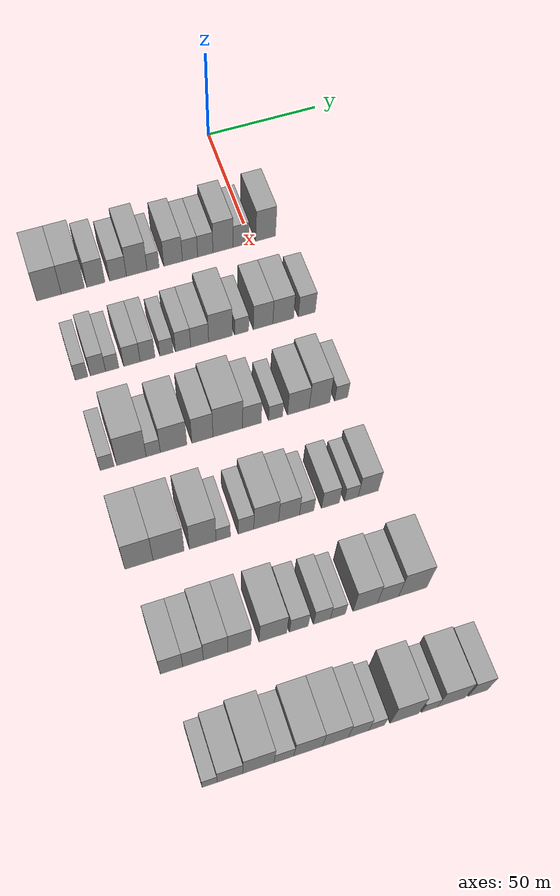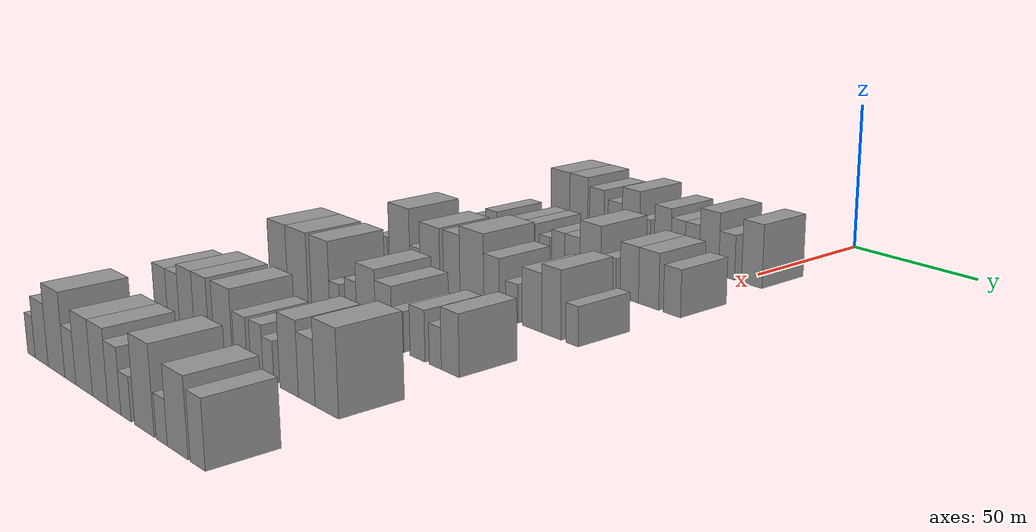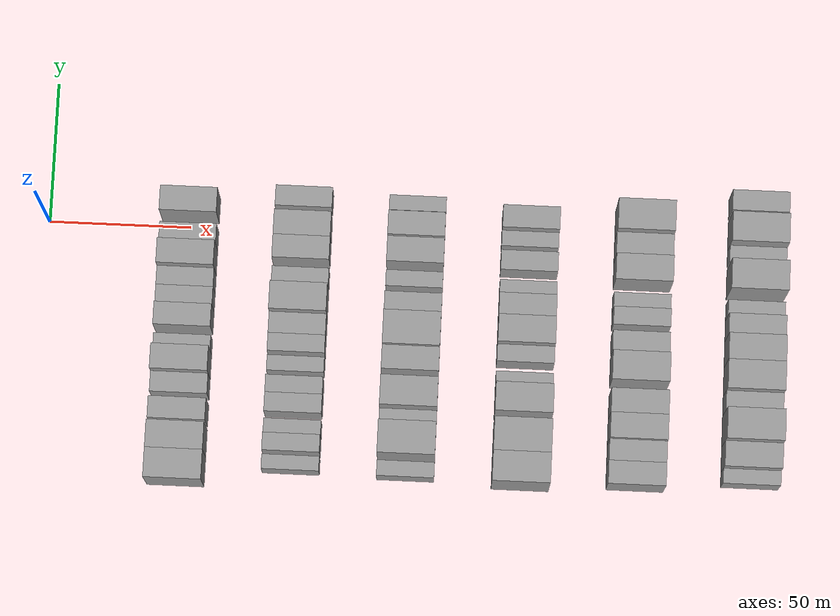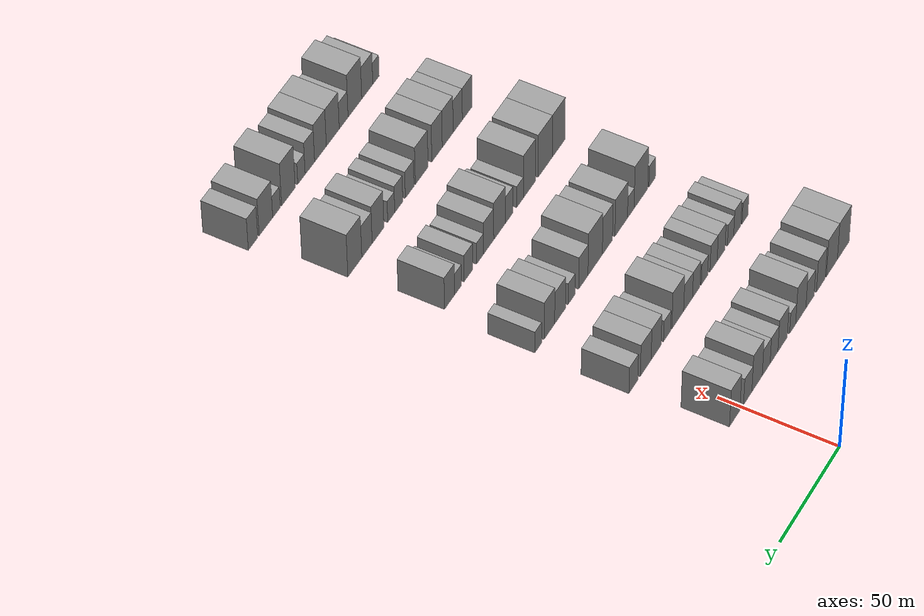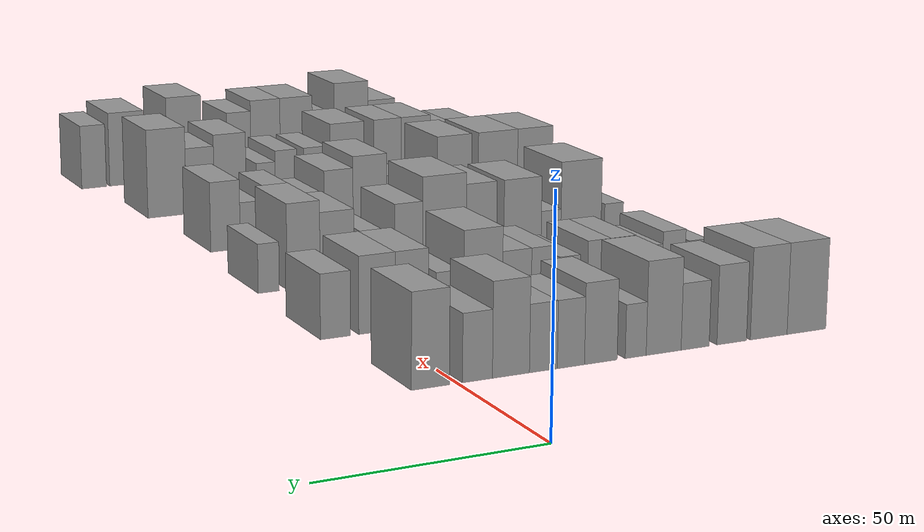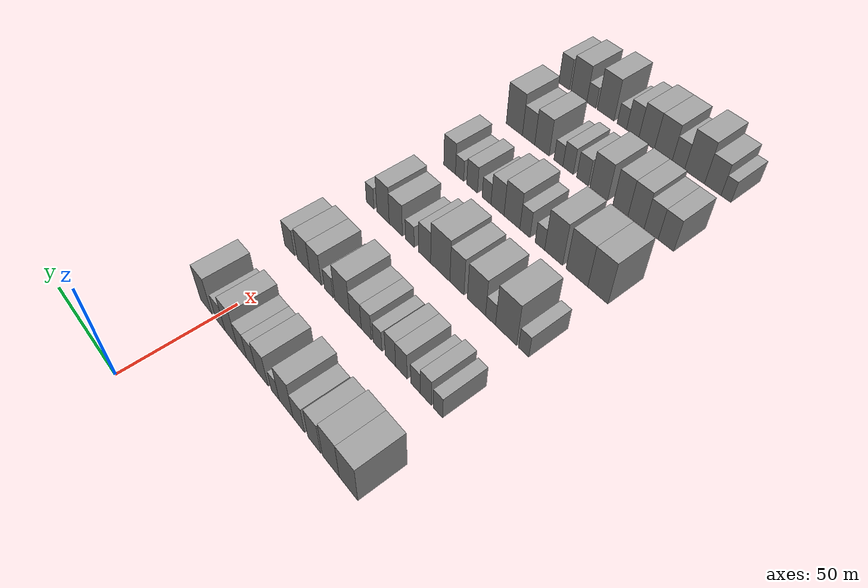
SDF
<sdf version="1.6">
 <world name="default">
  <model name="building_57">
   <static>1</static>
   <pose>50.0000 -86.7762 0 0.000000 0.000000 0.000000</pose>
   <link name="link">
    <pose>0 0 10.50 0 0 0</pose>
    <collision name="collision"><geometry><box><size>20.0000 10.3632 21.0000</size></box></geometry></collision>
    <visual name="visual">
     <cast_shadows>0</cast_shadows>
     <geometry><box><size>20.0000 10.3632 21.0000</size></box></geometry>
     <material>
      <script>
       <uri>model://grey_wall/materials/scripts</uri>
       <uri>model://grey_wall/materials/textures</uri>
       <name>vrc/grey_wall</name>
      </script>
     </material>
    </visual>
   </link>
  </model>
  <model name="building_58">
   <static>1</static>
   <pose>50.0000 -76.7567 0 0.000000 0.000000 0.000000</pose>
   <link name="link">
    <pose>0 0 10.50 0 0 0</pose>
    <collision name="collision"><geometry><box><size>20.0000 9.6757 21.0000</size></box></geometry></collision>
    <visual name="visual">
     <cast_shadows>0</cast_shadows>
     <geometry><box><size>20.0000 9.6757 21.0000</size></box></geometry>
     <material>
      <script>
       <uri>model://grey_wall/materials/scripts</uri>
       <uri>model://grey_wall/materials/textures</uri>
       <name>vrc/grey_wall</name>
      </script>
     </material>
    </visual>
   </link>
  </model>
  <model name="building_59">
   <static>1</static>
   <pose>50.0000 -67.0836 0 0.000000 0.000000 0.000000</pose>
   <link name="link">
    <pose>0 0 9.00 0 0 0</pose>
    <collision name="collision"><geometry><box><size>20.0000 7.6705 18.0000</size></box></geometry></collision>
    <visual name="visual">
     <cast_shadows>0</cast_shadows>
     <geometry><box><size>20.0000 7.6705 18.0000</size></box></geometry>
     <material>
      <script>
       <uri>model://grey_wall/materials/scripts</uri>
       <uri>model://grey_wall/materials/textures</uri>
       <name>vrc/grey_wall</name>
      </script>
     </material>
    </visual>
   </link>
  </model>
  <model name="building_60">
   <static>1</static>
   <pose>50.0000 -57.6711 0 0.000000 0.000000 0.000000</pose>
   <link name="link">
    <pose>0 0 7.50 0 0 0</pose>
    <collision name="collision"><geometry><box><size>20.0000 7.1544 15.0000</size></box></geometry></collision>
    <visual name="visual">
     <cast_shadows>0</cast_shadows>
     <geometry><box><size>20.0000 7.1544 15.0000</size></box></geometry>
     <material>
      <script>
       <uri>model://grey_wall/materials/scripts</uri>
       <uri>model://grey_wall/materials/textures</uri>
       <name>vrc/grey_wall</name>
      </script>
     </material>
    </visual>
   </link>
  </model>
  <model name="building_61">
   <static>1</static>
   <pose>50.0000 -49.6958 0 0.000000 0.000000 0.000000</pose>
   <link name="link">
    <pose>0 0 10.50 0 0 0</pose>
    <collision name="collision"><geometry><box><size>20.0000 8.7962 21.0000</size></box></geometry></collision>
    <visual name="visual">
     <cast_shadows>0</cast_shadows>
     <geometry><box><size>20.0000 8.7962 21.0000</size></box></geometry>
     <material>
      <script>
       <uri>model://grey_wall/materials/scripts</uri>
       <uri>model://grey_wall/materials/textures</uri>
       <name>vrc/grey_wall</name>
      </script>
     </material>
    </visual>
   </link>
  </model>
  <model name="building_62">
   <static>1</static>
   <pose>50.0000 -42.6953 0 0.000000 0.000000 0.000000</pose>
   <link name="link">
    <pose>0 0 6.00 0 0 0</pose>
    <collision name="collision"><geometry><box><size>20.0000 5.2047 12.0000</size></box></geometry></collision>
    <visual name="visual">
     <cast_shadows>0</cast_shadows>
     <geometry><box><size>20.0000 5.2047 12.0000</size></box></geometry>
     <material>
      <script>
       <uri>model://grey_wall/materials/scripts</uri>
       <uri>model://grey_wall/materials/textures</uri>
       <name>vrc/grey_wall</name>
      </script>
     </material>
    </visual>
   </link>
  </model>
  <model name="building_63">
   <static>1</static>
   <pose>50.0000 -34.0878 0 0.000000 0.000000 0.000000</pose>
   <link name="link">
    <pose>0 0 9.00 0 0 0</pose>
    <collision name="collision"><geometry><box><size>20.0000 8.0103 18.0000</size></box></geometry></collision>
    <visual name="visual">
     <cast_shadows>0</cast_shadows>
     <geometry><box><size>20.0000 8.0103 18.0000</size></box></geometry>
     <material>
      <script>
       <uri>model://grey_wall/materials/scripts</uri>
       <uri>model://grey_wall/materials/textures</uri>
       <name>vrc/grey_wall</name>
      </script>
     </material>
    </visual>
   </link>
  </model>
  <model name="building_64">
   <static>1</static>
   <pose>50.0000 -26.7853 0 0.000000 0.000000 0.000000</pose>
   <link name="link">
    <pose>0 0 7.50 0 0 0</pose>
    <collision name="collision"><geometry><box><size>20.0000 6.5948 15.0000</size></box></geometry></collision>
    <visual name="visual">
     <cast_shadows>0</cast_shadows>
     <geometry><box><size>20.0000 6.5948 15.0000</size></box></geometry>
     <material>
      <script>
       <uri>model://grey_wall/materials/scripts</uri>
       <uri>model://grey_wall/materials/textures</uri>
       <name>vrc/grey_wall</name>
      </script>
     </material>
    </visual>
   </link>
  </model>
  <model name="building_65">
   <static>1</static>
   <pose>50.0000 -20.1616 0 0.000000 0.000000 0.000000</pose>
   <link name="link">
    <pose>0 0 7.50 0 0 0</pose>
    <collision name="collision"><geometry><box><size>20.0000 6.6525 15.0000</size></box></geometry></collision>
    <visual name="visual">
     <cast_shadows>0</cast_shadows>
     <geometry><box><size>20.0000 6.6525 15.0000</size></box></geometry>
     <material>
      <script>
       <uri>model://grey_wall/materials/scripts</uri>
       <uri>model://grey_wall/materials/textures</uri>
       <name>vrc/grey_wall</name>
      </script>
     </material>
    </visual>
   </link>
  </model>
  <model name="building_66">
   <static>1</static>
   <pose>50.0000 -12.4660 0 0.000000 0.000000 0.000000</pose>
   <link name="link">
    <pose>0 0 10.50 0 0 0</pose>
    <collision name="collision"><geometry><box><size>20.0000 8.7388 21.0000</size></box></geometry></collision>
    <visual name="visual">
     <cast_shadows>0</cast_shadows>
     <geometry><box><size>20.0000 8.7388 21.0000</size></box></geometry>
     <material>
      <script>
       <uri>model://grey_wall/materials/scripts</uri>
       <uri>model://grey_wall/materials/textures</uri>
       <name>vrc/grey_wall</name>
      </script>
     </material>
    </visual>
   </link>
  </model>
  <model name="building_67">
   <static>1</static>
   <pose>50.0000 -4.6055 0 0.000000 0.000000 0.000000</pose>
   <link name="link">
    <pose>0 0 7.50 0 0 0</pose>
    <collision name="collision"><geometry><box><size>20.0000 6.9823 15.0000</size></box></geometry></collision>
    <visual name="visual">
     <cast_shadows>0</cast_shadows>
     <geometry><box><size>20.0000 6.9823 15.0000</size></box></geometry>
     <material>
      <script>
       <uri>model://grey_wall/materials/scripts</uri>
       <uri>model://grey_wall/materials/textures</uri>
       <name>vrc/grey_wall</name>
      </script>
     </material>
    </visual>
   </link>
  </model>
  <model name="building_68">
   <static>1</static>
   <pose>50.0000 6.2458 0 0.000000 0.000000 0.000000</pose>
   <link name="link">
    <pose>0 0 10.50 0 0 0</pose>
    <collision name="collision"><geometry><box><size>20.0000 8.7205 21.0000</size></box></geometry></collision>
    <visual name="visual">
     <cast_shadows>0</cast_shadows>
     <geometry><box><size>20.0000 8.7205 21.0000</size></box></geometry>
     <material>
      <script>
       <uri>model://grey_wall/materials/scripts</uri>
       <uri>model://grey_wall/materials/textures</uri>
       <name>vrc/grey_wall</name>
      </script>
     </material>
    </visual>
   </link>
  </model>
  <model name="building_200">
   <static>1</static>
   <pose>90.0000 -83.5003 0 0.000000 0.000000 0.000000</pose>
   <link name="link">
    <pose>0 0 6.00 0 0 0</pose>
    <collision name="collision"><geometry><box><size>20.0000 5.1215 12.0000</size></box></geometry></collision>
    <visual name="visual">
     <cast_shadows>0</cast_shadows>
     <geometry><box><size>20.0000 5.1215 12.0000</size></box></geometry>
     <material>
      <script>
       <uri>model://grey_wall/materials/scripts</uri>
       <uri>model://grey_wall/materials/textures</uri>
       <name>vrc/grey_wall</name>
      </script>
     </material>
    </visual>
   </link>
  </model>
  <model name="building_201">
   <static>1</static>
   <pose>90.0000 -76.8345 0 0.000000 0.000000 0.000000</pose>
   <link name="link">
    <pose>0 0 7.50 0 0 0</pose>
    <collision name="collision"><geometry><box><size>20.0000 6.2100 15.0000</size></box></geometry></collision>
    <visual name="visual">
     <cast_shadows>0</cast_shadows>
     <geometry><box><size>20.0000 6.2100 15.0000</size></box></geometry>
     <material>
      <script>
       <uri>model://grey_wall/materials/scripts</uri>
       <uri>model://grey_wall/materials/textures</uri>
       <name>vrc/grey_wall</name>
      </script>
     </material>
    </visual>
   </link>
  </model>
  <model name="building_202">
   <static>1</static>
   <pose>90.0000 -71.0354 0 0.000000 0.000000 0.000000</pose>
   <link name="link">
    <pose>0 0 6.00 0 0 0</pose>
    <collision name="collision"><geometry><box><size>20.0000 5.3882 12.0000</size></box></geometry></collision>
    <visual name="visual">
     <cast_shadows>0</cast_shadows>
     <geometry><box><size>20.0000 5.3882 12.0000</size></box></geometry>
     <material>
      <script>
       <uri>model://grey_wall/materials/scripts</uri>
       <uri>model://grey_wall/materials/textures</uri>
       <name>vrc/grey_wall</name>
      </script>
     </material>
    </visual>
   </link>
  </model>
  <model name="building_203">
   <static>1</static>
   <pose>90.0000 -62.9731 0 0.000000 0.000000 0.000000</pose>
   <link name="link">
    <pose>0 0 7.50 0 0 0</pose>
    <collision name="collision"><geometry><box><size>20.0000 6.7364 15.0000</size></box></geometry></collision>
    <visual name="visual">
     <cast_shadows>0</cast_shadows>
     <geometry><box><size>20.0000 6.7364 15.0000</size></box></geometry>
     <material>
      <script>
       <uri>model://grey_wall/materials/scripts</uri>
       <uri>model://grey_wall/materials/textures</uri>
       <name>vrc/grey_wall</name>
      </script>
     </material>
    </visual>
   </link>
  </model>
  <model name="building_204">
   <static>1</static>
   <pose>90.0000 -56.5542 0 0.000000 0.000000 0.000000</pose>
   <link name="link">
    <pose>0 0 7.50 0 0 0</pose>
    <collision name="collision"><geometry><box><size>20.0000 6.1013 15.0000</size></box></geometry></collision>
    <visual name="visual">
     <cast_shadows>0</cast_shadows>
     <geometry><box><size>20.0000 6.1013 15.0000</size></box></geometry>
     <material>
      <script>
       <uri>model://grey_wall/materials/scripts</uri>
       <uri>model://grey_wall/materials/textures</uri>
       <name>vrc/grey_wall</name>
      </script>
     </material>
    </visual>
   </link>
  </model>
  <model name="building_205">
   <static>1</static>
   <pose>90.0000 -48.7841 0 0.000000 0.000000 0.000000</pose>
   <link name="link">
    <pose>0 0 6.00 0 0 0</pose>
    <collision name="collision"><geometry><box><size>20.0000 5.4390 12.0000</size></box></geometry></collision>
    <visual name="visual">
     <cast_shadows>0</cast_shadows>
     <geometry><box><size>20.0000 5.4390 12.0000</size></box></geometry>
     <material>
      <script>
       <uri>model://grey_wall/materials/scripts</uri>
       <uri>model://grey_wall/materials/textures</uri>
       <name>vrc/grey_wall</name>
      </script>
     </material>
    </visual>
   </link>
  </model>
  <model name="building_206">
   <static>1</static>
   <pose>90.0000 -41.9028 0 0.000000 0.000000 0.000000</pose>
   <link name="link">
    <pose>0 0 7.50 0 0 0</pose>
    <collision name="collision"><geometry><box><size>20.0000 6.3235 15.0000</size></box></geometry></collision>
    <visual name="visual">
     <cast_shadows>0</cast_shadows>
     <geometry><box><size>20.0000 6.3235 15.0000</size></box></geometry>
     <material>
      <script>
       <uri>model://grey_wall/materials/scripts</uri>
       <uri>model://grey_wall/materials/textures</uri>
       <name>vrc/grey_wall</name>
      </script>
     </material>
    </visual>
   </link>
  </model>
  <model name="building_207">
   <static>1</static>
   <pose>90.0000 -35.0129 0 0.000000 0.000000 0.000000</pose>
   <link name="link">
    <pose>0 0 7.50 0 0 0</pose>
    <collision name="collision"><geometry><box><size>20.0000 7.4564 15.0000</size></box></geometry></collision>
    <visual name="visual">
     <cast_shadows>0</cast_shadows>
     <geometry><box><size>20.0000 7.4564 15.0000</size></box></geometry>
     <material>
      <script>
       <uri>model://grey_wall/materials/scripts</uri>
       <uri>model://grey_wall/materials/textures</uri>
       <name>vrc/grey_wall</name>
      </script>
     </material>
    </visual>
   </link>
  </model>
  <model name="building_208">
   <static>1</static>
   <pose>90.0000 -26.3475 0 0.000000 0.000000 0.000000</pose>
   <link name="link">
    <pose>0 0 10.50 0 0 0</pose>
    <collision name="collision"><geometry><box><size>20.0000 9.8745 21.0000</size></box></geometry></collision>
    <visual name="visual">
     <cast_shadows>0</cast_shadows>
     <geometry><box><size>20.0000 9.8745 21.0000</size></box></geometry>
     <material>
      <script>
       <uri>model://grey_wall/materials/scripts</uri>
       <uri>model://grey_wall/materials/textures</uri>
       <name>vrc/grey_wall</name>
      </script>
     </material>
    </visual>
   </link>
  </model>
  <model name="building_209">
   <static>1</static>
   <pose>90.0000 -17.4646 0 0.000000 0.000000 0.000000</pose>
   <link name="link">
    <pose>0 0 6.00 0 0 0</pose>
    <collision name="collision"><geometry><box><size>20.0000 5.8913 12.0000</size></box></geometry></collision>
    <visual name="visual">
     <cast_shadows>0</cast_shadows>
     <geometry><box><size>20.0000 5.8913 12.0000</size></box></geometry>
     <material>
      <script>
       <uri>model://grey_wall/materials/scripts</uri>
       <uri>model://grey_wall/materials/textures</uri>
       <name>vrc/grey_wall</name>
      </script>
     </material>
    </visual>
   </link>
  </model>
  <model name="building_210">
   <static>1</static>
   <pose>90.0000 -8.4083 0 0.000000 0.000000 0.000000</pose>
   <link name="link">
    <pose>0 0 9.00 0 0 0</pose>
    <collision name="collision"><geometry><box><size>20.0000 8.2212 18.0000</size></box></geometry></collision>
    <visual name="visual">
     <cast_shadows>0</cast_shadows>
     <geometry><box><size>20.0000 8.2212 18.0000</size></box></geometry>
     <material>
      <script>
       <uri>model://grey_wall/materials/scripts</uri>
       <uri>model://grey_wall/materials/textures</uri>
       <name>vrc/grey_wall</name>
      </script>
     </material>
    </visual>
   </link>
  </model>
  <model name="building_211">
   <static>1</static>
   <pose>90.0000 0.1334 0 0.000000 0.000000 0.000000</pose>
   <link name="link">
    <pose>0 0 9.00 0 0 0</pose>
    <collision name="collision"><geometry><box><size>20.0000 8.8623 18.0000</size></box></geometry></collision>
    <visual name="visual">
     <cast_shadows>0</cast_shadows>
     <geometry><box><size>20.0000 8.8623 18.0000</size></box></geometry>
     <material>
      <script>
       <uri>model://grey_wall/materials/scripts</uri>
       <uri>model://grey_wall/materials/textures</uri>
       <name>vrc/grey_wall</name>
      </script>
     </material>
    </visual>
   </link>
  </model>
  <model name="building_212">
   <static>1</static>
   <pose>90.0000 10.1912 0 0.000000 0.000000 0.000000</pose>
   <link name="link">
    <pose>0 0 7.50 0 0 0</pose>
    <collision name="collision"><geometry><box><size>20.0000 7.2533 15.0000</size></box></geometry></collision>
    <visual name="visual">
     <cast_shadows>0</cast_shadows>
     <geometry><box><size>20.0000 7.2533 15.0000</size></box></geometry>
     <material>
      <script>
       <uri>model://grey_wall/materials/scripts</uri>
       <uri>model://grey_wall/materials/textures</uri>
       <name>vrc/grey_wall</name>
      </script>
     </material>
    </visual>
   </link>
  </model>
  <model name="building_340">
   <static>1</static>
   <pose>130.0000 -83.9022 0 0.000000 0.000000 0.000000</pose>
   <link name="link">
    <pose>0 0 6.00 0 0 0</pose>
    <collision name="collision"><geometry><box><size>20.0000 5.4371 12.0000</size></box></geometry></collision>
    <visual name="visual">
     <cast_shadows>0</cast_shadows>
     <geometry><box><size>20.0000 5.4371 12.0000</size></box></geometry>
     <material>
      <script>
       <uri>model://grey_wall/materials/scripts</uri>
       <uri>model://grey_wall/materials/textures</uri>
       <name>vrc/grey_wall</name>
      </script>
     </material>
    </visual>
   </link>
  </model>
  <model name="building_341">
   <static>1</static>
   <pose>130.0000 -74.3977 0 0.000000 0.000000 0.000000</pose>
   <link name="link">
    <pose>0 0 12.00 0 0 0</pose>
    <collision name="collision"><geometry><box><size>20.0000 11.5720 24.0000</size></box></geometry></collision>
    <visual name="visual">
     <cast_shadows>0</cast_shadows>
     <geometry><box><size>20.0000 11.5720 24.0000</size></box></geometry>
     <material>
      <script>
       <uri>model://grey_wall/materials/scripts</uri>
       <uri>model://grey_wall/materials/textures</uri>
       <name>vrc/grey_wall</name>
      </script>
     </material>
    </visual>
   </link>
  </model>
  <model name="building_342">
   <static>1</static>
   <pose>130.0000 -65.8242 0 0.000000 0.000000 0.000000</pose>
   <link name="link">
    <pose>0 0 6.00 0 0 0</pose>
    <collision name="collision"><geometry><box><size>20.0000 5.5749 12.0000</size></box></geometry></collision>
    <visual name="visual">
     <cast_shadows>0</cast_shadows>
     <geometry><box><size>20.0000 5.5749 12.0000</size></box></geometry>
     <material>
      <script>
       <uri>model://grey_wall/materials/scripts</uri>
       <uri>model://grey_wall/materials/textures</uri>
       <name>vrc/grey_wall</name>
      </script>
     </material>
    </visual>
   </link>
  </model>
  <model name="building_343">
   <static>1</static>
   <pose>130.0000 -57.7880 0 0.000000 0.000000 0.000000</pose>
   <link name="link">
    <pose>0 0 10.50 0 0 0</pose>
    <collision name="collision"><geometry><box><size>20.0000 10.4975 21.0000</size></box></geometry></collision>
    <visual name="visual">
     <cast_shadows>0</cast_shadows>
     <geometry><box><size>20.0000 10.4975 21.0000</size></box></geometry>
     <material>
      <script>
       <uri>model://grey_wall/materials/scripts</uri>
       <uri>model://grey_wall/materials/textures</uri>
       <name>vrc/grey_wall</name>
      </script>
     </material>
    </visual>
   </link>
  </model>
  <model name="building_344">
   <static>1</static>
   <pose>130.0000 -46.3308 0 0.000000 0.000000 0.000000</pose>
   <link name="link">
    <pose>0 0 10.50 0 0 0</pose>
    <collision name="collision"><geometry><box><size>20.0000 8.4169 21.0000</size></box></geometry></collision>
    <visual name="visual">
     <cast_shadows>0</cast_shadows>
     <geometry><box><size>20.0000 8.4169 21.0000</size></box></geometry>
     <material>
      <script>
       <uri>model://grey_wall/materials/scripts</uri>
       <uri>model://grey_wall/materials/textures</uri>
       <name>vrc/grey_wall</name>
      </script>
     </material>
    </visual>
   </link>
  </model>
  <model name="building_345">
   <static>1</static>
   <pose>130.0000 -36.1937 0 0.000000 0.000000 0.000000</pose>
   <link name="link">
    <pose>0 0 12.00 0 0 0</pose>
    <collision name="collision"><geometry><box><size>20.0000 11.8574 24.0000</size></box></geometry></collision>
    <visual name="visual">
     <cast_shadows>0</cast_shadows>
     <geometry><box><size>20.0000 11.8574 24.0000</size></box></geometry>
     <material>
      <script>
       <uri>model://grey_wall/materials/scripts</uri>
       <uri>model://grey_wall/materials/textures</uri>
       <name>vrc/grey_wall</name>
      </script>
     </material>
    </visual>
   </link>
  </model>
  <model name="building_346">
   <static>1</static>
   <pose>130.0000 -26.4988 0 0.000000 0.000000 0.000000</pose>
   <link name="link">
    <pose>0 0 9.00 0 0 0</pose>
    <collision name="collision"><geometry><box><size>20.0000 7.5324 18.0000</size></box></geometry></collision>
    <visual name="visual">
     <cast_shadows>0</cast_shadows>
     <geometry><box><size>20.0000 7.5324 18.0000</size></box></geometry>
     <material>
      <script>
       <uri>model://grey_wall/materials/scripts</uri>
       <uri>model://grey_wall/materials/textures</uri>
       <name>vrc/grey_wall</name>
      </script>
     </material>
    </visual>
   </link>
  </model>
  <model name="building_347">
   <static>1</static>
   <pose>130.0000 -16.8822 0 0.000000 0.000000 0.000000</pose>
   <link name="link">
    <pose>0 0 6.00 0 0 0</pose>
    <collision name="collision"><geometry><box><size>20.0000 5.7009 12.0000</size></box></geometry></collision>
    <visual name="visual">
     <cast_shadows>0</cast_shadows>
     <geometry><box><size>20.0000 5.7009 12.0000</size></box></geometry>
     <material>
      <script>
       <uri>model://grey_wall/materials/scripts</uri>
       <uri>model://grey_wall/materials/textures</uri>
       <name>vrc/grey_wall</name>
      </script>
     </material>
    </visual>
   </link>
  </model>
  <model name="building_348">
   <static>1</static>
   <pose>130.0000 -7.5818 0 0.000000 0.000000 0.000000</pose>
   <link name="link">
    <pose>0 0 9.00 0 0 0</pose>
    <collision name="collision"><geometry><box><size>20.0000 8.8999 18.0000</size></box></geometry></collision>
    <visual name="visual">
     <cast_shadows>0</cast_shadows>
     <geometry><box><size>20.0000 8.8999 18.0000</size></box></geometry>
     <material>
      <script>
       <uri>model://grey_wall/materials/scripts</uri>
       <uri>model://grey_wall/materials/textures</uri>
       <name>vrc/grey_wall</name>
      </script>
     </material>
    </visual>
   </link>
  </model>
  <model name="building_349">
   <static>1</static>
   <pose>130.0000 1.1211 0 0.000000 0.000000 0.000000</pose>
   <link name="link">
    <pose>0 0 10.50 0 0 0</pose>
    <collision name="collision"><geometry><box><size>20.0000 8.5058 21.0000</size></box></geometry></collision>
    <visual name="visual">
     <cast_shadows>0</cast_shadows>
     <geometry><box><size>20.0000 8.5058 21.0000</size></box></geometry>
     <material>
      <script>
       <uri>model://grey_wall/materials/scripts</uri>
       <uri>model://grey_wall/materials/textures</uri>
       <name>vrc/grey_wall</name>
      </script>
     </material>
    </visual>
   </link>
  </model>
  <model name="building_350">
   <static>1</static>
   <pose>130.0000 10.0593 0 0.000000 0.000000 0.000000</pose>
   <link name="link">
    <pose>0 0 6.00 0 0 0</pose>
    <collision name="collision"><geometry><box><size>20.0000 5.3705 12.0000</size></box></geometry></collision>
    <visual name="visual">
     <cast_shadows>0</cast_shadows>
     <geometry><box><size>20.0000 5.3705 12.0000</size></box></geometry>
     <material>
      <script>
       <uri>model://grey_wall/materials/scripts</uri>
       <uri>model://grey_wall/materials/textures</uri>
       <name>vrc/grey_wall</name>
      </script>
     </material>
    </visual>
   </link>
  </model>
  <model name="building_477">
   <static>1</static>
   <pose>170.0000 -82.7929 0 0.000000 0.000000 0.000000</pose>
   <link name="link">
    <pose>0 0 12.00 0 0 0</pose>
    <collision name="collision"><geometry><box><size>20.0000 10.6139 24.0000</size></box></geometry></collision>
    <visual name="visual">
     <cast_shadows>0</cast_shadows>
     <geometry><box><size>20.0000 10.6139 24.0000</size></box></geometry>
     <material>
      <script>
       <uri>model://grey_wall/materials/scripts</uri>
       <uri>model://grey_wall/materials/textures</uri>
       <name>vrc/grey_wall</name>
      </script>
     </material>
    </visual>
   </link>
  </model>
  <model name="building_478">
   <static>1</static>
   <pose>170.0000 -71.6167 0 0.000000 0.000000 0.000000</pose>
   <link name="link">
    <pose>0 0 12.00 0 0 0</pose>
    <collision name="collision"><geometry><box><size>20.0000 11.7384 24.0000</size></box></geometry></collision>
    <visual name="visual">
     <cast_shadows>0</cast_shadows>
     <geometry><box><size>20.0000 11.7384 24.0000</size></box></geometry>
     <material>
      <script>
       <uri>model://grey_wall/materials/scripts</uri>
       <uri>model://grey_wall/materials/textures</uri>
       <name>vrc/grey_wall</name>
      </script>
     </material>
    </visual>
   </link>
  </model>
  <model name="building_479">
   <static>1</static>
   <pose>170.0000 -58.6818 0 0.000000 0.000000 0.000000</pose>
   <link name="link">
    <pose>0 0 12.00 0 0 0</pose>
    <collision name="collision"><geometry><box><size>20.0000 10.1314 24.0000</size></box></geometry></collision>
    <visual name="visual">
     <cast_shadows>0</cast_shadows>
     <geometry><box><size>20.0000 10.1314 24.0000</size></box></geometry>
     <material>
      <script>
       <uri>model://grey_wall/materials/scripts</uri>
       <uri>model://grey_wall/materials/textures</uri>
       <name>vrc/grey_wall</name>
      </script>
     </material>
    </visual>
   </link>
  </model>
  <model name="building_480">
   <static>1</static>
   <pose>170.0000 -50.8608 0 0.000000 0.000000 0.000000</pose>
   <link name="link">
    <pose>0 0 6.00 0 0 0</pose>
    <collision name="collision"><geometry><box><size>20.0000 5.5106 12.0000</size></box></geometry></collision>
    <visual name="visual">
     <cast_shadows>0</cast_shadows>
     <geometry><box><size>20.0000 5.5106 12.0000</size></box></geometry>
     <material>
      <script>
       <uri>model://grey_wall/materials/scripts</uri>
       <uri>model://grey_wall/materials/textures</uri>
       <name>vrc/grey_wall</name>
      </script>
     </material>
    </visual>
   </link>
  </model>
  <model name="building_481">
   <static>1</static>
   <pose>170.0000 -42.1025 0 0.000000 0.000000 0.000000</pose>
   <link name="link">
    <pose>0 0 7.50 0 0 0</pose>
    <collision name="collision"><geometry><box><size>20.0000 6.0059 15.0000</size></box></geometry></collision>
    <visual name="visual">
     <cast_shadows>0</cast_shadows>
     <geometry><box><size>20.0000 6.0059 15.0000</size></box></geometry>
     <material>
      <script>
       <uri>model://grey_wall/materials/scripts</uri>
       <uri>model://grey_wall/materials/textures</uri>
       <name>vrc/grey_wall</name>
      </script>
     </material>
    </visual>
   </link>
  </model>
  <model name="building_482">
   <static>1</static>
   <pose>170.0000 -34.2829 0 0.000000 0.000000 0.000000</pose>
   <link name="link">
    <pose>0 0 10.50 0 0 0</pose>
    <collision name="collision"><geometry><box><size>20.0000 9.6333 21.0000</size></box></geometry></collision>
    <visual name="visual">
     <cast_shadows>0</cast_shadows>
     <geometry><box><size>20.0000 9.6333 21.0000</size></box></geometry>
     <material>
      <script>
       <uri>model://grey_wall/materials/scripts</uri>
       <uri>model://grey_wall/materials/textures</uri>
       <name>vrc/grey_wall</name>
      </script>
     </material>
    </visual>
   </link>
  </model>
  <model name="building_483">
   <static>1</static>
   <pose>170.0000 -25.3923 0 0.000000 0.000000 0.000000</pose>
   <link name="link">
    <pose>0 0 9.00 0 0 0</pose>
    <collision name="collision"><geometry><box><size>20.0000 8.1480 18.0000</size></box></geometry></collision>
    <visual name="visual">
     <cast_shadows>0</cast_shadows>
     <geometry><box><size>20.0000 8.1480 18.0000</size></box></geometry>
     <material>
      <script>
       <uri>model://grey_wall/materials/scripts</uri>
       <uri>model://grey_wall/materials/textures</uri>
       <name>vrc/grey_wall</name>
      </script>
     </material>
    </visual>
   </link>
  </model>
  <model name="building_484">
   <static>1</static>
   <pose>170.0000 -18.4971 0 0.000000 0.000000 0.000000</pose>
   <link name="link">
    <pose>0 0 6.00 0 0 0</pose>
    <collision name="collision"><geometry><box><size>20.0000 5.6424 12.0000</size></box></geometry></collision>
    <visual name="visual">
     <cast_shadows>0</cast_shadows>
     <geometry><box><size>20.0000 5.6424 12.0000</size></box></geometry>
     <material>
      <script>
       <uri>model://grey_wall/materials/scripts</uri>
       <uri>model://grey_wall/materials/textures</uri>
       <name>vrc/grey_wall</name>
      </script>
     </material>
    </visual>
   </link>
  </model>
  <model name="building_485">
   <static>1</static>
   <pose>170.0000 -9.1692 0 0.000000 0.000000 0.000000</pose>
   <link name="link">
    <pose>0 0 7.50 0 0 0</pose>
    <collision name="collision"><geometry><box><size>20.0000 7.0135 15.0000</size></box></geometry></collision>
    <visual name="visual">
     <cast_shadows>0</cast_shadows>
     <geometry><box><size>20.0000 7.0135 15.0000</size></box></geometry>
     <material>
      <script>
       <uri>model://grey_wall/materials/scripts</uri>
       <uri>model://grey_wall/materials/textures</uri>
       <name>vrc/grey_wall</name>
      </script>
     </material>
    </visual>
   </link>
  </model>
  <model name="building_486">
   <static>1</static>
   <pose>170.0000 -0.9115 0 0.000000 0.000000 0.000000</pose>
   <link name="link">
    <pose>0 0 6.00 0 0 0</pose>
    <collision name="collision"><geometry><box><size>20.0000 5.5019 12.0000</size></box></geometry></collision>
    <visual name="visual">
     <cast_shadows>0</cast_shadows>
     <geometry><box><size>20.0000 5.5019 12.0000</size></box></geometry>
     <material>
      <script>
       <uri>model://grey_wall/materials/scripts</uri>
       <uri>model://grey_wall/materials/textures</uri>
       <name>vrc/grey_wall</name>
      </script>
     </material>
    </visual>
   </link>
  </model>
  <model name="building_487">
   <static>1</static>
   <pose>170.0000 5.8274 0 0.000000 0.000000 0.000000</pose>
   <link name="link">
    <pose>0 0 9.00 0 0 0</pose>
    <collision name="collision"><geometry><box><size>20.0000 7.9759 18.0000</size></box></geometry></collision>
    <visual name="visual">
     <cast_shadows>0</cast_shadows>
     <geometry><box><size>20.0000 7.9759 18.0000</size></box></geometry>
     <material>
      <script>
       <uri>model://grey_wall/materials/scripts</uri>
       <uri>model://grey_wall/materials/textures</uri>
       <name>vrc/grey_wall</name>
      </script>
     </material>
    </visual>
   </link>
  </model>
  <model name="building_614">
   <static>1</static>
   <pose>210.0000 -82.4292 0 0.000000 0.000000 0.000000</pose>
   <link name="link">
    <pose>0 0 9.00 0 0 0</pose>
    <collision name="collision"><geometry><box><size>20.0000 8.1232 18.0000</size></box></geometry></collision>
    <visual name="visual">
     <cast_shadows>0</cast_shadows>
     <geometry><box><size>20.0000 8.1232 18.0000</size></box></geometry>
     <material>
      <script>
       <uri>model://grey_wall/materials/scripts</uri>
       <uri>model://grey_wall/materials/textures</uri>
       <name>vrc/grey_wall</name>
      </script>
     </material>
    </visual>
   </link>
  </model>
  <model name="building_615">
   <static>1</static>
   <pose>210.0000 -74.6309 0 0.000000 0.000000 0.000000</pose>
   <link name="link">
    <pose>0 0 9.00 0 0 0</pose>
    <collision name="collision"><geometry><box><size>20.0000 7.4734 18.0000</size></box></geometry></collision>
    <visual name="visual">
     <cast_shadows>0</cast_shadows>
     <geometry><box><size>20.0000 7.4734 18.0000</size></box></geometry>
     <material>
      <script>
       <uri>model://grey_wall/materials/scripts</uri>
       <uri>model://grey_wall/materials/textures</uri>
       <name>vrc/grey_wall</name>
      </script>
     </material>
    </visual>
   </link>
  </model>
  <model name="building_616">
   <static>1</static>
   <pose>210.0000 -66.4428 0 0.000000 0.000000 0.000000</pose>
   <link name="link">
    <pose>0 0 10.50 0 0 0</pose>
    <collision name="collision"><geometry><box><size>20.0000 8.9028 21.0000</size></box></geometry></collision>
    <visual name="visual">
     <cast_shadows>0</cast_shadows>
     <geometry><box><size>20.0000 8.9028 21.0000</size></box></geometry>
     <material>
      <script>
       <uri>model://grey_wall/materials/scripts</uri>
       <uri>model://grey_wall/materials/textures</uri>
       <name>vrc/grey_wall</name>
      </script>
     </material>
    </visual>
   </link>
  </model>
  <model name="building_617">
   <static>1</static>
   <pose>210.0000 -57.7674 0 0.000000 0.000000 0.000000</pose>
   <link name="link">
    <pose>0 0 10.50 0 0 0</pose>
    <collision name="collision"><geometry><box><size>20.0000 8.4480 21.0000</size></box></geometry></collision>
    <visual name="visual">
     <cast_shadows>0</cast_shadows>
     <geometry><box><size>20.0000 8.4480 21.0000</size></box></geometry>
     <material>
      <script>
       <uri>model://grey_wall/materials/scripts</uri>
       <uri>model://grey_wall/materials/textures</uri>
       <name>vrc/grey_wall</name>
      </script>
     </material>
    </visual>
   </link>
  </model>
  <model name="building_618">
   <static>1</static>
   <pose>210.0000 -45.4140 0 0.000000 0.000000 0.000000</pose>
   <link name="link">
    <pose>0 0 10.50 0 0 0</pose>
    <collision name="collision"><geometry><box><size>20.0000 10.2586 21.0000</size></box></geometry></collision>
    <visual name="visual">
     <cast_shadows>0</cast_shadows>
     <geometry><box><size>20.0000 10.2586 21.0000</size></box></geometry>
     <material>
      <script>
       <uri>model://grey_wall/materials/scripts</uri>
       <uri>model://grey_wall/materials/textures</uri>
       <name>vrc/grey_wall</name>
      </script>
     </material>
    </visual>
   </link>
  </model>
  <model name="building_619">
   <static>1</static>
   <pose>210.0000 -35.7918 0 0.000000 0.000000 0.000000</pose>
   <link name="link">
    <pose>0 0 7.50 0 0 0</pose>
    <collision name="collision"><geometry><box><size>20.0000 6.9859 15.0000</size></box></geometry></collision>
    <visual name="visual">
     <cast_shadows>0</cast_shadows>
     <geometry><box><size>20.0000 6.9859 15.0000</size></box></geometry>
     <material>
      <script>
       <uri>model://grey_wall/materials/scripts</uri>
       <uri>model://grey_wall/materials/textures</uri>
       <name>vrc/grey_wall</name>
      </script>
     </material>
    </visual>
   </link>
  </model>
  <model name="building_620">
   <static>1</static>
   <pose>210.0000 -27.0993 0 0.000000 0.000000 0.000000</pose>
   <link name="link">
    <pose>0 0 7.50 0 0 0</pose>
    <collision name="collision"><geometry><box><size>20.0000 6.3991 15.0000</size></box></geometry></collision>
    <visual name="visual">
     <cast_shadows>0</cast_shadows>
     <geometry><box><size>20.0000 6.3991 15.0000</size></box></geometry>
     <material>
      <script>
       <uri>model://grey_wall/materials/scripts</uri>
       <uri>model://grey_wall/materials/textures</uri>
       <name>vrc/grey_wall</name>
      </script>
     </material>
    </visual>
   </link>
  </model>
  <model name="building_621">
   <static>1</static>
   <pose>210.0000 -21.1262 0 0.000000 0.000000 0.000000</pose>
   <link name="link">
    <pose>0 0 6.00 0 0 0</pose>
    <collision name="collision"><geometry><box><size>20.0000 5.5471 12.0000</size></box></geometry></collision>
    <visual name="visual">
     <cast_shadows>0</cast_shadows>
     <geometry><box><size>20.0000 5.5471 12.0000</size></box></geometry>
     <material>
      <script>
       <uri>model://grey_wall/materials/scripts</uri>
       <uri>model://grey_wall/materials/textures</uri>
       <name>vrc/grey_wall</name>
      </script>
     </material>
    </visual>
   </link>
  </model>
  <model name="building_622">
   <static>1</static>
   <pose>210.0000 -10.7314 0 0.000000 0.000000 0.000000</pose>
   <link name="link">
    <pose>0 0 10.50 0 0 0</pose>
    <collision name="collision"><geometry><box><size>20.0000 9.2426 21.0000</size></box></geometry></collision>
    <visual name="visual">
     <cast_shadows>0</cast_shadows>
     <geometry><box><size>20.0000 9.2426 21.0000</size></box></geometry>
     <material>
      <script>
       <uri>model://grey_wall/materials/scripts</uri>
       <uri>model://grey_wall/materials/textures</uri>
       <name>vrc/grey_wall</name>
      </script>
     </material>
    </visual>
   </link>
  </model>
  <model name="building_623">
   <static>1</static>
   <pose>210.0000 -2.0652 0 0.000000 0.000000 0.000000</pose>
   <link name="link">
    <pose>0 0 9.00 0 0 0</pose>
    <collision name="collision"><geometry><box><size>20.0000 8.0897 18.0000</size></box></geometry></collision>
    <visual name="visual">
     <cast_shadows>0</cast_shadows>
     <geometry><box><size>20.0000 8.0897 18.0000</size></box></geometry>
     <material>
      <script>
       <uri>model://grey_wall/materials/scripts</uri>
       <uri>model://grey_wall/materials/textures</uri>
       <name>vrc/grey_wall</name>
      </script>
     </material>
    </visual>
   </link>
  </model>
  <model name="building_624">
   <static>1</static>
   <pose>210.0000 7.4010 0 0.000000 0.000000 0.000000</pose>
   <link name="link">
    <pose>0 0 12.00 0 0 0</pose>
    <collision name="collision"><geometry><box><size>20.0000 10.8426 24.0000</size></box></geometry></collision>
    <visual name="visual">
     <cast_shadows>0</cast_shadows>
     <geometry><box><size>20.0000 10.8426 24.0000</size></box></geometry>
     <material>
      <script>
       <uri>model://grey_wall/materials/scripts</uri>
       <uri>model://grey_wall/materials/textures</uri>
       <name>vrc/grey_wall</name>
      </script>
     </material>
    </visual>
   </link>
  </model>
  <model name="building_749">
   <static>1</static>
   <pose>250.0000 -81.2121 0 0.000000 0.000000 0.000000</pose>
   <link name="link">
    <pose>0 0 6.00 0 0 0</pose>
    <collision name="collision"><geometry><box><size>20.0000 5.2146 12.0000</size></box></geometry></collision>
    <visual name="visual">
     <cast_shadows>0</cast_shadows>
     <geometry><box><size>20.0000 5.2146 12.0000</size></box></geometry>
     <material>
      <script>
       <uri>model://grey_wall/materials/scripts</uri>
       <uri>model://grey_wall/materials/textures</uri>
       <name>vrc/grey_wall</name>
      </script>
     </material>
    </visual>
   </link>
  </model>
  <model name="building_750">
   <static>1</static>
   <pose>250.0000 -74.1714 0 0.000000 0.000000 0.000000</pose>
   <link name="link">
    <pose>0 0 9.00 0 0 0</pose>
    <collision name="collision"><geometry><box><size>20.0000 8.8668 18.0000</size></box></geometry></collision>
    <visual name="visual">
     <cast_shadows>0</cast_shadows>
     <geometry><box><size>20.0000 8.8668 18.0000</size></box></geometry>
     <material>
      <script>
       <uri>model://grey_wall/materials/scripts</uri>
       <uri>model://grey_wall/materials/textures</uri>
       <name>vrc/grey_wall</name>
      </script>
     </material>
    </visual>
   </link>
  </model>
  <model name="building_751">
   <static>1</static>
   <pose>250.0000 -64.2683 0 0.000000 0.000000 0.000000</pose>
   <link name="link">
    <pose>0 0 12.00 0 0 0</pose>
    <collision name="collision"><geometry><box><size>20.0000 10.9393 24.0000</size></box></geometry></collision>
    <visual name="visual">
     <cast_shadows>0</cast_shadows>
     <geometry><box><size>20.0000 10.9393 24.0000</size></box></geometry>
     <material>
      <script>
       <uri>model://grey_wall/materials/scripts</uri>
       <uri>model://grey_wall/materials/textures</uri>
       <name>vrc/grey_wall</name>
      </script>
     </material>
    </visual>
   </link>
  </model>
  <model name="building_752">
   <static>1</static>
   <pose>250.0000 -55.2936 0 0.000000 0.000000 0.000000</pose>
   <link name="link">
    <pose>0 0 7.50 0 0 0</pose>
    <collision name="collision"><geometry><box><size>20.0000 7.0100 15.0000</size></box></geometry></collision>
    <visual name="visual">
     <cast_shadows>0</cast_shadows>
     <geometry><box><size>20.0000 7.0100 15.0000</size></box></geometry>
     <material>
      <script>
       <uri>model://grey_wall/materials/scripts</uri>
       <uri>model://grey_wall/materials/textures</uri>
       <name>vrc/grey_wall</name>
      </script>
     </material>
    </visual>
   </link>
  </model>
  <model name="building_753">
   <static>1</static>
   <pose>250.0000 -46.6843 0 0.000000 0.000000 0.000000</pose>
   <link name="link">
    <pose>0 0 10.50 0 0 0</pose>
    <collision name="collision"><geometry><box><size>20.0000 10.2088 21.0000</size></box></geometry></collision>
    <visual name="visual">
     <cast_shadows>0</cast_shadows>
     <geometry><box><size>20.0000 10.2088 21.0000</size></box></geometry>
     <material>
      <script>
       <uri>model://grey_wall/materials/scripts</uri>
       <uri>model://grey_wall/materials/textures</uri>
       <name>vrc/grey_wall</name>
      </script>
     </material>
    </visual>
   </link>
  </model>
  <model name="building_754">
   <static>1</static>
   <pose>250.0000 -36.9735 0 0.000000 0.000000 0.000000</pose>
   <link name="link">
    <pose>0 0 10.50 0 0 0</pose>
    <collision name="collision"><geometry><box><size>20.0000 9.2128 21.0000</size></box></geometry></collision>
    <visual name="visual">
     <cast_shadows>0</cast_shadows>
     <geometry><box><size>20.0000 9.2128 21.0000</size></box></geometry>
     <material>
      <script>
       <uri>model://grey_wall/materials/scripts</uri>
       <uri>model://grey_wall/materials/textures</uri>
       <name>vrc/grey_wall</name>
      </script>
     </material>
    </visual>
   </link>
  </model>
  <model name="building_755">
   <static>1</static>
   <pose>250.0000 -28.6544 0 0.000000 0.000000 0.000000</pose>
   <link name="link">
    <pose>0 0 9.00 0 0 0</pose>
    <collision name="collision"><geometry><box><size>20.0000 7.4253 18.0000</size></box></geometry></collision>
    <visual name="visual">
     <cast_shadows>0</cast_shadows>
     <geometry><box><size>20.0000 7.4253 18.0000</size></box></geometry>
     <material>
      <script>
       <uri>model://grey_wall/materials/scripts</uri>
       <uri>model://grey_wall/materials/textures</uri>
       <name>vrc/grey_wall</name>
      </script>
     </material>
    </visual>
   </link>
  </model>
  <model name="building_756">
   <static>1</static>
   <pose>250.0000 -22.0743 0 0.000000 0.000000 0.000000</pose>
   <link name="link">
    <pose>0 0 6.00 0 0 0</pose>
    <collision name="collision"><geometry><box><size>20.0000 5.7350 12.0000</size></box></geometry></collision>
    <visual name="visual">
     <cast_shadows>0</cast_shadows>
     <geometry><box><size>20.0000 5.7350 12.0000</size></box></geometry>
     <material>
      <script>
       <uri>model://grey_wall/materials/scripts</uri>
       <uri>model://grey_wall/materials/textures</uri>
       <name>vrc/grey_wall</name>
      </script>
     </material>
    </visual>
   </link>
  </model>
  <model name="building_757">
   <static>1</static>
   <pose>250.0000 -11.9406 0 0.000000 0.000000 0.000000</pose>
   <link name="link">
    <pose>0 0 12.00 0 0 0</pose>
    <collision name="collision"><geometry><box><size>20.0000 10.5324 24.0000</size></box></geometry></collision>
    <visual name="visual">
     <cast_shadows>0</cast_shadows>
     <geometry><box><size>20.0000 10.5324 24.0000</size></box></geometry>
     <material>
      <script>
       <uri>model://grey_wall/materials/scripts</uri>
       <uri>model://grey_wall/materials/textures</uri>
       <name>vrc/grey_wall</name>
      </script>
     </material>
    </visual>
   </link>
  </model>
  <model name="building_758">
   <static>1</static>
   <pose>250.0000 -2.7612 0 0.000000 0.000000 0.000000</pose>
   <link name="link">
    <pose>0 0 6.00 0 0 0</pose>
    <collision name="collision"><geometry><box><size>20.0000 5.8263 12.0000</size></box></geometry></collision>
    <visual name="visual">
     <cast_shadows>0</cast_shadows>
     <geometry><box><size>20.0000 5.8263 12.0000</size></box></geometry>
     <material>
      <script>
       <uri>model://grey_wall/materials/scripts</uri>
       <uri>model://grey_wall/materials/textures</uri>
       <name>vrc/grey_wall</name>
      </script>
     </material>
    </visual>
   </link>
  </model>
  <model name="building_759">
   <static>1</static>
   <pose>250.0000 5.3673 0 0.000000 0.000000 0.000000</pose>
   <link name="link">
    <pose>0 0 10.50 0 0 0</pose>
    <collision name="collision"><geometry><box><size>20.0000 10.4307 21.0000</size></box></geometry></collision>
    <visual name="visual">
     <cast_shadows>0</cast_shadows>
     <geometry><box><size>20.0000 10.4307 21.0000</size></box></geometry>
     <material>
      <script>
       <uri>model://grey_wall/materials/scripts</uri>
       <uri>model://grey_wall/materials/textures</uri>
       <name>vrc/grey_wall</name>
      </script>
     </material>
    </visual>
   </link>
  </model>
  <model name="building_760">
   <static>1</static>
   <pose>250.0000 15.2040 0 0.000000 0.000000 0.000000</pose>
   <link name="link">
    <pose>0 0 9.00 0 0 0</pose>
    <collision name="collision"><geometry><box><size>20.0000 7.2426 18.0000</size></box></geometry></collision>
    <visual name="visual">
     <cast_shadows>0</cast_shadows>
     <geometry><box><size>20.0000 7.2426 18.0000</size></box></geometry>
     <material>
      <script>
       <uri>model://grey_wall/materials/scripts</uri>
       <uri>model://grey_wall/materials/textures</uri>
       <name>vrc/grey_wall</name>
      </script>
     </material>
    </visual>
   </link>
  </model>
 </world>
</sdf>
